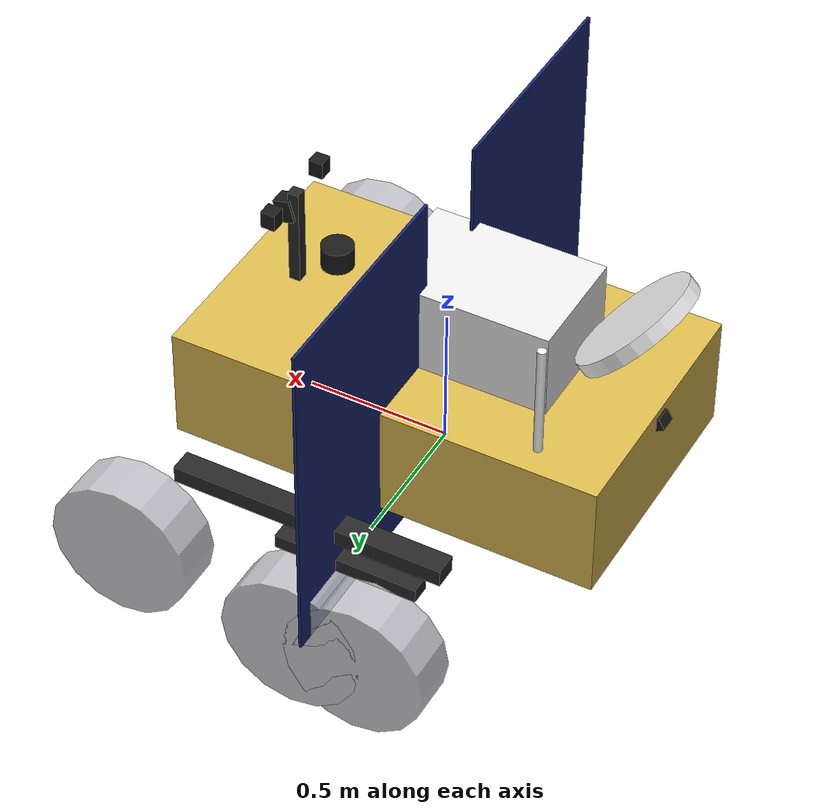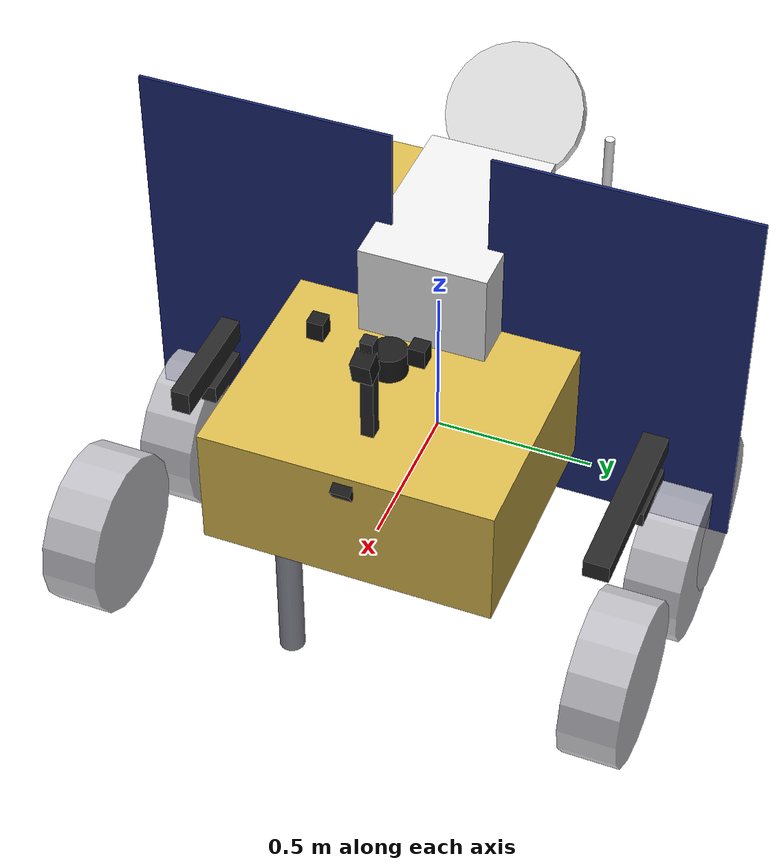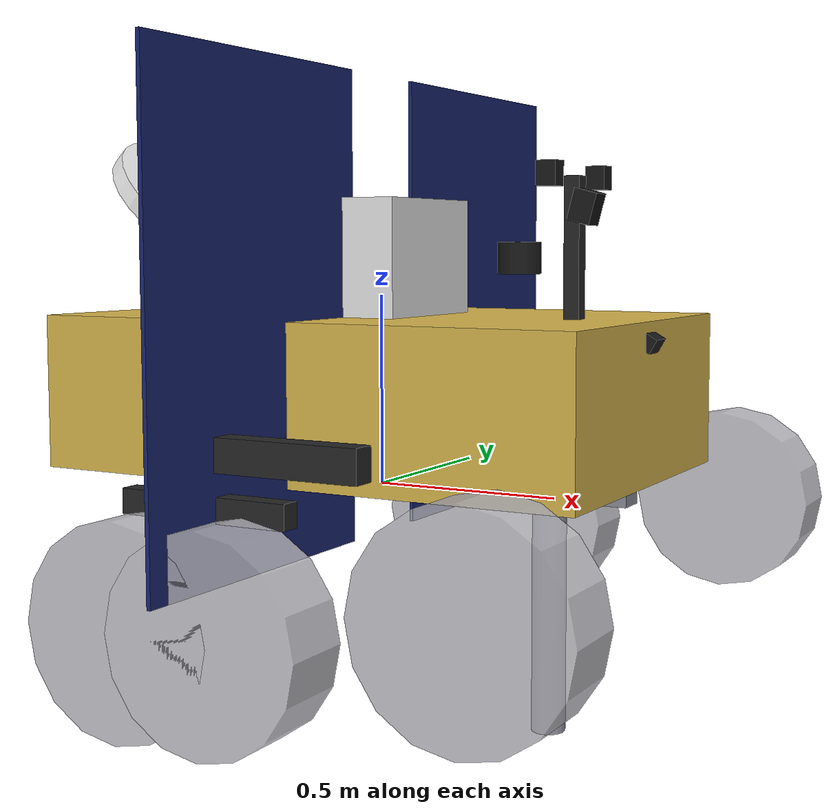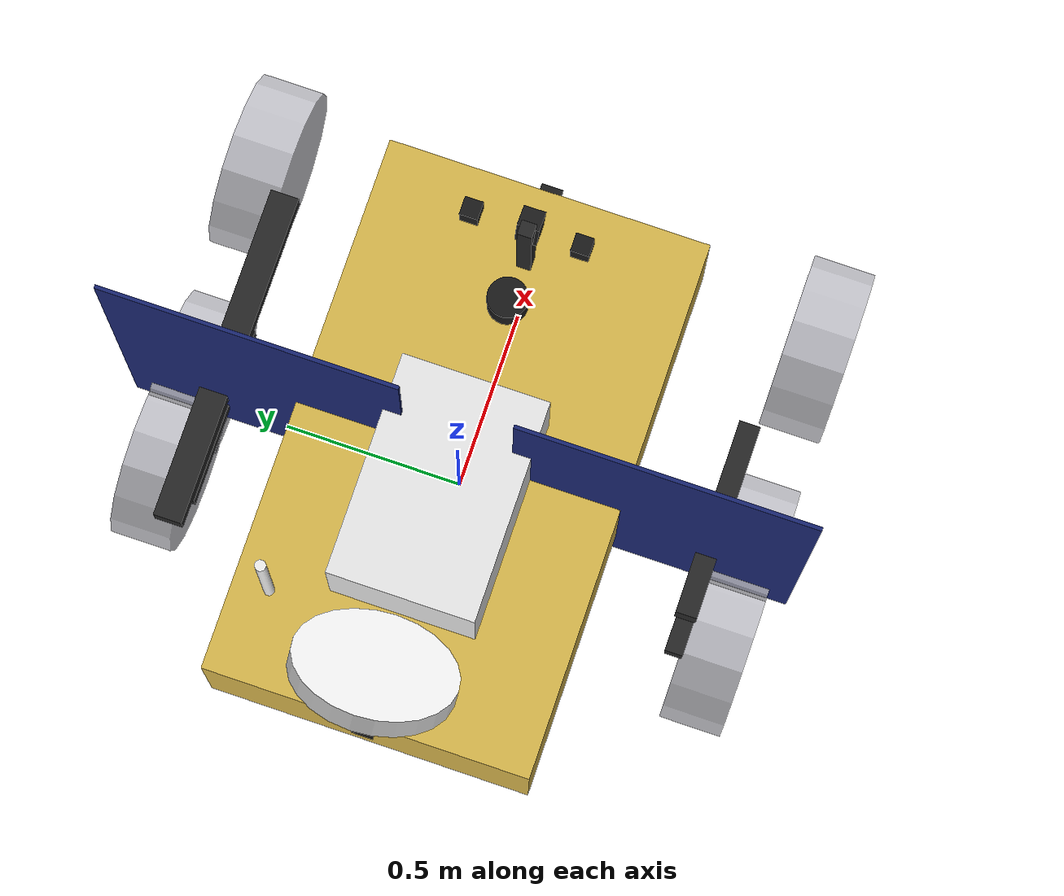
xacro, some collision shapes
<?xml version="1.0"?>
<robot name="lunar_scout" xmlns:xacro="http://www.ros.org/wiki/xacro">

  <!-- STL meshes exported from NX CAD at 1:1 scale (meters) -->
  <xacro:property name="MESH_PKG" value="package://lunar_scout_description/meshes"/>

  <!-- ============================================================
       PROPERTIES AND CONSTANTS
       ============================================================ -->
  <xacro:property name="PI" value="3.14159265358979"/>

  <!-- Chassis dimensions (aluminum honeycomb structure) -->
  <xacro:property name="chassis_length"    value="1.60"/>
  <xacro:property name="chassis_width"     value="1.00"/>
  <xacro:property name="chassis_height"    value="0.40"/>
  <xacro:property name="chassis_mass"      value="60.0"/>

  <!-- Wheel properties (titanium mesh wheels) -->
  <xacro:property name="wheel_radius"      value="0.25"/>
  <xacro:property name="wheel_width"       value="0.12"/>
  <xacro:property name="wheel_mass"        value="3.5"/>

  <!-- Rocker-bogie geometry -->
  <xacro:property name="rocker_length"     value="0.55"/>
  <xacro:property name="rocker_height"     value="0.08"/>
  <xacro:property name="rocker_width"      value="0.06"/>
  <xacro:property name="rocker_mass"       value="4.0"/>

  <xacro:property name="bogie_length"      value="0.45"/>
  <xacro:property name="bogie_height"      value="0.06"/>
  <xacro:property name="bogie_width"       value="0.05"/>
  <xacro:property name="bogie_mass"        value="3.0"/>

  <!-- Wheelbase and track -->
  <xacro:property name="wheelbase"         value="1.20"/>
  <xacro:property name="track_width"       value="1.40"/>
  <xacro:property name="side_offset"       value="0.70"/>

  <!-- Front wheel offset from rocker pivot -->
  <xacro:property name="front_wheel_x"     value="0.60"/>
  <!-- Rear bogie offset -->
  <xacro:property name="rear_wheel_x"      value="-0.60"/>
  <!-- Mid wheel offset -->
  <xacro:property name="mid_wheel_x"       value="0.0"/>

  <!-- Vertical drop from body to wheel center -->
  <xacro:property name="wheel_z_offset"    value="-0.35"/>

  <!-- Sensor positions -->
  <xacro:property name="imu_x"             value="0.0"/>
  <xacro:property name="imu_y"             value="0.0"/>
  <xacro:property name="imu_z"             value="0.05"/>

  <xacro:property name="lidar_x"           value="0.40"/>
  <xacro:property name="lidar_y"           value="0.0"/>
  <xacro:property name="lidar_z"           value="0.35"/>

  <xacro:property name="nav_cam_baseline"  value="0.30"/>
  <xacro:property name="nav_cam_x"         value="0.55"/>
  <xacro:property name="nav_cam_z"         value="0.30"/>

  <xacro:property name="hazard_cam_x_front" value="0.75"/>
  <xacro:property name="hazard_cam_x_rear"  value="-0.75"/>
  <xacro:property name="hazard_cam_z"       value="0.15"/>

  <!-- ============================================================
       INERTIA MACROS
       ============================================================ -->
  <xacro:macro name="box_inertia" params="m x y z">
    <inertial>
      <mass value="${m}"/>
      <inertia
        ixx="${m*(y*y+z*z)/12.0}"
        ixy="0.0" ixz="0.0"
        iyy="${m*(x*x+z*z)/12.0}"
        iyz="0.0"
        izz="${m*(x*x+y*y)/12.0}"/>
    </inertial>
  </xacro:macro>

  <xacro:macro name="cylinder_inertia" params="m r h">
    <inertial>
      <mass value="${m}"/>
      <inertia
        ixx="${m*(3*r*r+h*h)/12.0}"
        ixy="0.0" ixz="0.0"
        iyy="${m*(3*r*r+h*h)/12.0}"
        iyz="0.0"
        izz="${m*r*r/2.0}"/>
    </inertial>
  </xacro:macro>

  <xacro:macro name="sphere_inertia" params="m r">
    <inertial>
      <mass value="${m}"/>
      <inertia
        ixx="${2*m*r*r/5.0}"
        ixy="0.0" ixz="0.0"
        iyy="${2*m*r*r/5.0}"
        iyz="0.0"
        izz="${2*m*r*r/5.0}"/>
    </inertial>
  </xacro:macro>

  <!-- ============================================================
       MATERIAL DEFINITIONS
       ============================================================ -->
  <material name="aluminum_gold">
    <color rgba="0.85 0.72 0.30 1.0"/>
  </material>
  <material name="titanium_mesh">
    <color rgba="0.75 0.75 0.78 0.85"/>
  </material>
  <material name="carbon_fiber">
    <color rgba="0.15 0.15 0.15 1.0"/>
  </material>
  <material name="white_thermal">
    <color rgba="0.92 0.92 0.92 1.0"/>
  </material>
  <material name="solar_panel_blue">
    <color rgba="0.10 0.15 0.45 1.0"/>
  </material>
  <material name="sensor_black">
    <color rgba="0.1 0.1 0.1 1.0"/>
  </material>
  <material name="antenna_white">
    <color rgba="0.95 0.95 0.95 1.0"/>
  </material>
  <material name="science_gray">
    <color rgba="0.55 0.55 0.60 1.0"/>
  </material>

  <!-- ============================================================
       WHEEL MACRO
       ============================================================ -->
  <xacro:macro name="wheel" params="prefix side reflect_y">
    <link name="${prefix}_${side}_wheel">
      <xacro:cylinder_inertia m="${wheel_mass}" r="${wheel_radius}" h="${wheel_width}"/>
      <visual>
        <origin xyz="0 0 0" rpy="${PI/2} 0 0"/>
        <geometry>
          <cylinder radius="${wheel_radius}" length="${wheel_width}"/>
        </geometry>
        <material name="titanium_mesh"/>
      </visual>
      <collision>
        <origin xyz="0 0 0" rpy="${PI/2} 0 0"/>
        <geometry>
          <cylinder radius="${wheel_radius}" length="${wheel_width}"/>
        </geometry>
      </collision>
    </link>

    <!-- Wheel drive joint (continuous for wheel spin) -->
    <joint name="${prefix}_${side}_wheel_joint" type="continuous">
      <parent link="${prefix}_${side}_bogie"/>
      <child  link="${prefix}_${side}_wheel"/>
      <origin xyz="${mid_wheel_x} ${reflect_y * (bogie_width/2 + wheel_width/2 + 0.02)} ${wheel_z_offset}" rpy="0 0 0"/>
      <axis xyz="0 1 0"/>
      <dynamics damping="0.5" friction="1.0"/>
      <limit effort="30.0" velocity="10.0"/>
    </joint>
  </xacro:macro>

  <!-- ============================================================
       ROCKER-BOGIE SUSPENSION MACRO
       ============================================================ -->
  <xacro:macro name="suspension_side" params="side reflect_y">

    <!-- === ROCKER LINK === -->
    <link name="${side}_rocker">
      <xacro:box_inertia m="${rocker_mass}" x="${rocker_length}" y="${rocker_width}" z="${rocker_height}"/>
      <visual>
        <origin xyz="0 0 0" rpy="0 0 0"/>
        <geometry>
          <mesh filename="${MESH_PKG}/rocker_arm_${side}.stl" scale="1 1 1"/>
        </geometry>
        <material name="carbon_fiber"/>
      </visual>
      <collision>
        <origin xyz="0 0 0" rpy="0 0 0"/>
        <geometry>
          <box size="${rocker_length} ${rocker_width} ${rocker_height}"/>
        </geometry>
      </collision>
    </link>

    <!-- Rocker pivot joint (revolute about Y, allows rocker to pitch) -->
    <joint name="${side}_rocker_joint" type="revolute">
      <parent link="base_link"/>
      <child  link="${side}_rocker"/>
      <origin xyz="0.10 ${reflect_y * side_offset} ${wheel_z_offset + wheel_radius + 0.02}" rpy="0 0 0"/>
      <axis xyz="0 1 0"/>
      <limit lower="-0.4" upper="0.4" effort="0.0" velocity="1.0"/>
      <dynamics damping="1.0" friction="0.5"/>
    </joint>

    <!-- === FRONT WHEEL (directly on rocker) === -->
    <link name="front_${side}_wheel">
      <xacro:cylinder_inertia m="${wheel_mass}" r="${wheel_radius}" h="${wheel_width}"/>
      <visual>
        <origin xyz="0 0 0" rpy="${PI/2} 0 0"/>
        <geometry>
          <mesh filename="${MESH_PKG}/wheel_assembly.stl" scale="1 1 1"/>
        </geometry>
        <material name="titanium_mesh"/>
      </visual>
      <collision>
        <origin xyz="0 0 0" rpy="${PI/2} 0 0"/>
        <geometry>
          <cylinder radius="${wheel_radius}" length="${wheel_width}"/>
        </geometry>
        <surface>
          <friction>
            <ode>
              <mu>0.85</mu>
              <mu2>0.65</mu2>
              <fdir1>1 0 0</fdir1>
              <slip1>0.0</slip1>
              <slip2>0.0</slip2>
            </ode>
          </friction>
          <contact>
            <ode>
              <kp>1e6</kp>
              <kd>100.0</kd>
              <min_depth>0.001</min_depth>
            </ode>
          </contact>
        </surface>
      </collision>
    </link>

    <joint name="front_${side}_wheel_joint" type="continuous">
      <parent link="${side}_rocker"/>
      <child  link="front_${side}_wheel"/>
      <origin xyz="${front_wheel_x} ${reflect_y * (rocker_width/2 + wheel_width/2 + 0.02)} ${-(wheel_radius + 0.02)}" rpy="0 0 0"/>
      <axis xyz="0 1 0"/>
      <dynamics damping="0.5" friction="1.0"/>
      <limit effort="30.0" velocity="10.0"/>
    </joint>

    <!-- === BOGIE LINK (rear half of suspension) === -->
    <link name="${side}_bogie">
      <xacro:box_inertia m="${bogie_mass}" x="${bogie_length}" y="${bogie_width}" z="${bogie_height}"/>
      <visual>
        <origin xyz="0 0 0" rpy="0 0 0"/>
        <geometry>
          <mesh filename="${MESH_PKG}/bogie_arm_${side}.stl" scale="1 1 1"/>
        </geometry>
        <material name="carbon_fiber"/>
      </visual>
      <collision>
        <origin xyz="0 0 0" rpy="0 0 0"/>
        <geometry>
          <box size="${bogie_length} ${bogie_width} ${bogie_height}"/>
        </geometry>
      </collision>
    </link>

    <!-- Bogie pivot joint (revolute about Y axis) -->
    <joint name="${side}_bogie_joint" type="revolute">
      <parent link="${side}_rocker"/>
      <child  link="${side}_bogie"/>
      <origin xyz="${-rocker_length/4} 0 ${-(wheel_radius/2)}" rpy="0 0 0"/>
      <axis xyz="0 1 0"/>
      <limit lower="-0.5" upper="0.5" effort="0.0" velocity="1.0"/>
      <dynamics damping="0.8" friction="0.3"/>
    </joint>

    <!-- === MID WHEEL (front of bogie) === -->
    <link name="mid_${side}_wheel">
      <xacro:cylinder_inertia m="${wheel_mass}" r="${wheel_radius}" h="${wheel_width}"/>
      <visual>
        <origin xyz="0 0 0" rpy="${PI/2} 0 0"/>
        <geometry>
          <mesh filename="${MESH_PKG}/wheel_assembly.stl" scale="1 1 1"/>
        </geometry>
        <material name="titanium_mesh"/>
      </visual>
      <collision>
        <origin xyz="0 0 0" rpy="${PI/2} 0 0"/>
        <geometry>
          <cylinder radius="${wheel_radius}" length="${wheel_width}"/>
        </geometry>
        <surface>
          <friction>
            <ode>
              <mu>0.85</mu>
              <mu2>0.65</mu2>
            </ode>
          </friction>
        </surface>
      </collision>
    </link>

    <joint name="mid_${side}_wheel_joint" type="continuous">
      <parent link="${side}_bogie"/>
      <child  link="mid_${side}_wheel"/>
      <origin xyz="${bogie_length/4} ${reflect_y * (bogie_width/2 + wheel_width/2 + 0.02)} ${-(wheel_radius + 0.01)}" rpy="0 0 0"/>
      <axis xyz="0 1 0"/>
      <dynamics damping="0.5" friction="1.0"/>
      <limit effort="30.0" velocity="10.0"/>
    </joint>

    <!-- === REAR WHEEL (rear of bogie) === -->
    <link name="rear_${side}_wheel">
      <xacro:cylinder_inertia m="${wheel_mass}" r="${wheel_radius}" h="${wheel_width}"/>
      <visual>
        <origin xyz="0 0 0" rpy="${PI/2} 0 0"/>
        <geometry>
          <mesh filename="${MESH_PKG}/wheel_assembly.stl" scale="1 1 1"/>
        </geometry>
        <material name="titanium_mesh"/>
      </visual>
      <collision>
        <origin xyz="0 0 0" rpy="${PI/2} 0 0"/>
        <geometry>
          <cylinder radius="${wheel_radius}" length="${wheel_width}"/>
        </geometry>
        <surface>
          <friction>
            <ode>
              <mu>0.85</mu>
              <mu2>0.65</mu2>
            </ode>
          </friction>
        </surface>
      </collision>
    </link>

    <joint name="rear_${side}_wheel_joint" type="continuous">
      <parent link="${side}_bogie"/>
      <child  link="rear_${side}_wheel"/>
      <origin xyz="${-bogie_length/4} ${reflect_y * (bogie_width/2 + wheel_width/2 + 0.02)} ${-(wheel_radius + 0.01)}" rpy="0 0 0"/>
      <axis xyz="0 1 0"/>
      <dynamics damping="0.5" friction="1.0"/>
      <limit effort="30.0" velocity="10.0"/>
    </joint>

  </xacro:macro>

  <!-- ============================================================
       SOLAR ARRAY MACRO
       ============================================================ -->
  <xacro:macro name="solar_panel" params="side reflect_y">
    <link name="solar_panel_${side}">
      <xacro:box_inertia m="4.0" x="1.20" y="0.80" z="0.02"/>
      <visual>
        <origin xyz="0 0 0" rpy="0 0 0"/>
        <geometry>
          <mesh filename="${MESH_PKG}/solar_array_panel.stl" scale="1 1 1"/>
        </geometry>
        <material name="solar_panel_blue"/>
      </visual>
      <collision>
        <origin xyz="0 0 0" rpy="0 0 0"/>
        <geometry>
          <box size="1.20 0.80 0.02"/>
        </geometry>
      </collision>
    </link>
    <!-- Deployable hinge joint for solar panel -->
    <joint name="solar_panel_${side}_joint" type="revolute">
      <parent link="base_link"/>
      <child  link="solar_panel_${side}"/>
      <origin xyz="0.0 ${reflect_y * (chassis_width/2 + 0.05)} 0.22" rpy="0 ${-PI/2 * reflect_y} 0"/>
      <axis xyz="1 0 0"/>
      <limit lower="0.0" upper="${PI/2}" effort="5.0" velocity="0.2"/>
      <dynamics damping="2.0" friction="1.0"/>
    </joint>
  </xacro:macro>

  <!-- ============================================================
       BASE / CHASSIS LINK
       ============================================================ -->
  <link name="base_footprint"/>

  <joint name="base_footprint_joint" type="fixed">
    <parent link="base_footprint"/>
    <child  link="base_link"/>
    <origin xyz="0 0 ${wheel_radius}" rpy="0 0 0"/>
  </joint>

  <link name="base_link">
    <!-- Aluminum honeycomb chassis with thermal insulation blankets (MLI) -->
    <inertial>
      <mass value="${chassis_mass}"/>
      <!-- Non-uniform inertia (payload concentrated at center-rear) -->
      <inertia
        ixx="${chassis_mass*(chassis_width*chassis_width+chassis_height*chassis_height)/12.0}"
        ixy="0.0" ixz="-0.8"
        iyy="${chassis_mass*(chassis_length*chassis_length+chassis_height*chassis_height)/12.0}"
        iyz="0.0"
        izz="${chassis_mass*(chassis_length*chassis_length+chassis_width*chassis_width)/12.0}"/>
    </inertial>
    <visual>
      <origin xyz="0 0 0" rpy="0 0 0"/>
      <geometry>
        <mesh filename="${MESH_PKG}/chassis_body.stl" scale="1 1 1"/>
      </geometry>
      <material name="aluminum_gold"/>
    </visual>
    <collision>
      <origin xyz="0 0 0" rpy="0 0 0"/>
      <geometry>
        <box size="${chassis_length} ${chassis_width} ${chassis_height}"/>
      </geometry>
    </collision>
  </link>

  <!-- Electronics bay thermal shroud (MLI blanket representation) -->
  <link name="electronics_bay">
    <xacro:box_inertia m="15.0" x="0.50" y="0.80" z="0.30"/>
    <visual>
      <origin xyz="0 0 0" rpy="0 0 0"/>
      <geometry>
        <mesh filename="${MESH_PKG}/electronics_bay.stl" scale="1 1 1"/>
      </geometry>
      <material name="white_thermal"/>
    </visual>
    <collision>
      <origin xyz="0 0 0" rpy="0 0 0"/>
      <geometry>
        <box size="0.50 0.80 0.30"/>
      </geometry>
    </collision>
  </link>

  <joint name="electronics_bay_joint" type="fixed">
    <parent link="base_link"/>
    <child  link="electronics_bay"/>
    <origin xyz="-0.15 0 ${chassis_height/2 + 0.15}" rpy="0 0 0"/>
  </joint>

  <!-- ============================================================
       ROCKER-BOGIE SUSPENSION (BOTH SIDES)
       ============================================================ -->
  <xacro:suspension_side side="left"  reflect_y="1"/>
  <xacro:suspension_side side="right" reflect_y="-1"/>

  <!-- ============================================================
       IMU SENSOR
       ============================================================ -->
  <link name="imu_link">
    <xacro:box_inertia m="0.05" x="0.04" y="0.04" z="0.01"/>
    <visual>
      <origin xyz="0 0 0" rpy="0 0 0"/>
      <geometry>
        <box size="0.04 0.04 0.01"/>
      </geometry>
      <material name="sensor_black"/>
    </visual>
    <collision>
      <origin xyz="0 0 0" rpy="0 0 0"/>
      <geometry>
        <box size="0.04 0.04 0.01"/>
      </geometry>
    </collision>
  </link>

  <joint name="imu_joint" type="fixed">
    <parent link="base_link"/>
    <child  link="imu_link"/>
    <origin xyz="${imu_x} ${imu_y} ${imu_z}" rpy="0 0 0"/>
  </joint>

  <!-- ============================================================
       LIDAR (Velodyne VLP-16 style)
       ============================================================ -->
  <link name="lidar_link">
    <xacro:cylinder_inertia m="0.83" r="0.051" h="0.072"/>
    <visual>
      <origin xyz="0 0 0" rpy="0 0 0"/>
      <geometry>
        <mesh filename="${MESH_PKG}/lidar_housing.stl" scale="1 1 1"/>
      </geometry>
      <material name="sensor_black"/>
    </visual>
    <collision>
      <origin xyz="0 0 0" rpy="0 0 0"/>
      <geometry>
        <cylinder radius="0.055" length="0.080"/>
      </geometry>
    </collision>
  </link>

  <joint name="lidar_joint" type="fixed">
    <parent link="base_link"/>
    <child  link="lidar_link"/>
    <origin xyz="${lidar_x} ${lidar_y} ${lidar_z}" rpy="0 0 0"/>
  </joint>

  <!-- ============================================================
       NAVIGATION CAMERAS (Stereo pair, 0.3m baseline)
       ============================================================ -->
  <!-- NAV CAM MAST (support structure) -->
  <link name="nav_cam_mast">
    <xacro:box_inertia m="0.8" x="0.04" y="0.04" z="0.35"/>
    <visual>
      <origin xyz="0 0 0" rpy="0 0 0"/>
      <geometry>
        <mesh filename="${MESH_PKG}/mast_assembly.stl" scale="1 1 1"/>
      </geometry>
      <material name="carbon_fiber"/>
    </visual>
    <collision>
      <origin xyz="0 0 0" rpy="0 0 0"/>
      <geometry>
        <box size="0.04 0.04 0.35"/>
      </geometry>
    </collision>
  </link>

  <joint name="nav_cam_mast_joint" type="fixed">
    <parent link="base_link"/>
    <child  link="nav_cam_mast"/>
    <origin xyz="${nav_cam_x} 0 ${chassis_height/2 + 0.175}" rpy="0 0 0"/>
  </joint>

  <!-- LEFT NAV CAM -->
  <link name="nav_cam_left_link">
    <xacro:box_inertia m="0.22" x="0.05" y="0.05" z="0.06"/>
    <visual>
      <origin xyz="0 0 0" rpy="0 0 0"/>
      <geometry>
        <box size="0.05 0.05 0.06"/>
      </geometry>
      <material name="sensor_black"/>
    </visual>
    <collision>
      <origin xyz="0 0 0" rpy="0 0 0"/>
      <geometry>
        <box size="0.05 0.05 0.06"/>
      </geometry>
    </collision>
  </link>

  <joint name="nav_cam_left_joint" type="fixed">
    <parent link="nav_cam_mast"/>
    <child  link="nav_cam_left_link"/>
    <origin xyz="0 ${nav_cam_baseline/2} ${0.35/2}" rpy="0 0 0"/>
  </joint>

  <!-- RIGHT NAV CAM -->
  <link name="nav_cam_right_link">
    <xacro:box_inertia m="0.22" x="0.05" y="0.05" z="0.06"/>
    <visual>
      <origin xyz="0 0 0" rpy="0 0 0"/>
      <geometry>
        <box size="0.05 0.05 0.06"/>
      </geometry>
      <material name="sensor_black"/>
    </visual>
    <collision>
      <origin xyz="0 0 0" rpy="0 0 0"/>
      <geometry>
        <box size="0.05 0.05 0.06"/>
      </geometry>
    </collision>
  </link>

  <joint name="nav_cam_right_joint" type="fixed">
    <parent link="nav_cam_mast"/>
    <child  link="nav_cam_right_link"/>
    <origin xyz="0 ${-nav_cam_baseline/2} ${0.35/2}" rpy="0 0 0"/>
  </joint>

  <!-- ============================================================
       HAZARD CAMERAS (Front + Rear)
       ============================================================ -->
  <!-- Front hazcam (wide angle, downward-tilted 30 deg) -->
  <link name="hazcam_front_link">
    <xacro:box_inertia m="0.18" x="0.04" y="0.06" z="0.04"/>
    <visual>
      <origin xyz="0 0 0" rpy="0 0 0"/>
      <geometry>
        <box size="0.04 0.06 0.04"/>
      </geometry>
      <material name="sensor_black"/>
    </visual>
    <collision>
      <origin xyz="0 0 0" rpy="0 0 0"/>
      <geometry>
        <box size="0.04 0.06 0.04"/>
      </geometry>
    </collision>
  </link>

  <joint name="hazcam_front_joint" type="fixed">
    <parent link="base_link"/>
    <child  link="hazcam_front_link"/>
    <origin xyz="${hazard_cam_x_front} 0 ${hazard_cam_z}" rpy="0 ${PI/6} 0"/>
  </joint>

  <!-- Rear hazcam -->
  <link name="hazcam_rear_link">
    <xacro:box_inertia m="0.18" x="0.04" y="0.06" z="0.04"/>
    <visual>
      <origin xyz="0 0 0" rpy="0 0 0"/>
      <geometry>
        <box size="0.04 0.06 0.04"/>
      </geometry>
      <material name="sensor_black"/>
    </visual>
    <collision>
      <origin xyz="0 0 0" rpy="0 0 0"/>
      <geometry>
        <box size="0.04 0.06 0.04"/>
      </geometry>
    </collision>
  </link>

  <joint name="hazcam_rear_joint" type="fixed">
    <parent link="base_link"/>
    <child  link="hazcam_rear_link"/>
    <origin xyz="${hazard_cam_x_rear} 0 ${hazard_cam_z}" rpy="0 ${-PI/6} ${PI}"/>
  </joint>

  <!-- ============================================================
       UHF ANTENNA (omnidirectional, relay comms)
       ============================================================ -->
  <link name="uhf_antenna_link">
    <xacro:cylinder_inertia m="0.35" r="0.015" h="0.40"/>
    <visual>
      <origin xyz="0 0 0.20" rpy="0 0 0"/>
      <geometry>
        <cylinder radius="0.015" length="0.40"/>
      </geometry>
      <material name="antenna_white"/>
    </visual>
    <collision>
      <origin xyz="0 0 0.20" rpy="0 0 0"/>
      <geometry>
        <cylinder radius="0.015" length="0.40"/>
      </geometry>
    </collision>
  </link>

  <joint name="uhf_antenna_joint" type="fixed">
    <parent link="base_link"/>
    <child  link="uhf_antenna_link"/>
    <origin xyz="-0.50 0.35 ${chassis_height/2}" rpy="0 0 0"/>
  </joint>

  <!-- ============================================================
       HGA - High Gain Antenna (directional, X-band DTE comms)
       ============================================================ -->
  <link name="hga_link">
    <xacro:cylinder_inertia m="1.2" r="0.22" h="0.05"/>
    <visual>
      <origin xyz="0 0 0" rpy="0 0 0"/>
      <geometry>
        <mesh filename="${MESH_PKG}/hga_dish.stl" scale="1 1 1"/>
      </geometry>
      <material name="antenna_white"/>
    </visual>
    <collision>
      <origin xyz="0 0 0" rpy="0 0 0"/>
      <geometry>
        <cylinder radius="0.22" length="0.05"/>
      </geometry>
    </collision>
  </link>

  <joint name="hga_joint" type="revolute">
    <parent link="base_link"/>
    <child  link="hga_link"/>
    <origin xyz="-0.65 0.0 ${chassis_height/2 + 0.30}" rpy="0 ${PI/4} 0"/>
    <axis xyz="0 1 0"/>
    <limit lower="${-PI/3}" upper="${PI/3}" effort="2.0" velocity="0.1"/>
    <dynamics damping="1.0" friction="0.5"/>
  </joint>

  <!-- ============================================================
       SOLAR PANELS (deployable)
       ============================================================ -->
  <xacro:solar_panel side="left"  reflect_y="1"/>
  <xacro:solar_panel side="right" reflect_y="-1"/>

  <!-- ============================================================
       SCIENCE PAYLOAD: DRILL
       ============================================================ -->
  <link name="science_drill_link">
    <xacro:cylinder_inertia m="8.0" r="0.04" h="0.60"/>
    <visual>
      <origin xyz="0 0 -0.30" rpy="0 0 0"/>
      <geometry>
        <mesh filename="${MESH_PKG}/drill_assembly.stl" scale="1 1 1"/>
      </geometry>
      <material name="science_gray"/>
    </visual>
    <collision>
      <origin xyz="0 0 -0.30" rpy="0 0 0"/>
      <geometry>
        <cylinder radius="0.04" length="0.60"/>
      </geometry>
    </collision>
  </link>

  <joint name="science_drill_joint" type="prismatic">
    <parent link="base_link"/>
    <child  link="science_drill_link"/>
    <origin xyz="0.60 -0.25 ${-chassis_height/2 + 0.05}" rpy="0 0 0"/>
    <axis xyz="0 0 -1"/>
    <limit lower="0.0" upper="0.50" effort="50.0" velocity="0.02"/>
    <dynamics damping="5.0" friction="2.0"/>
  </joint>

  <!-- ============================================================
       SCIENCE PAYLOAD: NEUTRON SPECTROMETER
       ============================================================ -->
  <link name="neutron_spectrometer_link">
    <xacro:box_inertia m="1.8" x="0.12" y="0.08" z="0.10"/>
    <visual>
      <origin xyz="0 0 0" rpy="0 0 0"/>
      <geometry>
        <box size="0.12 0.08 0.10"/>
      </geometry>
      <material name="science_gray"/>
    </visual>
    <collision>
      <origin xyz="0 0 0" rpy="0 0 0"/>
      <geometry>
        <box size="0.12 0.08 0.10"/>
      </geometry>
    </collision>
  </link>

  <joint name="neutron_spectrometer_joint" type="fixed">
    <parent link="base_link"/>
    <child  link="neutron_spectrometer_link"/>
    <origin xyz="0.55 0.25 ${-chassis_height/2 - 0.05}" rpy="0 0 0"/>
  </joint>

  <!-- ============================================================
       SCIENCE PAYLOAD: THERMAL IR CAMERA
       ============================================================ -->
  <link name="thermal_ir_camera_link">
    <xacro:box_inertia m="0.45" x="0.06" y="0.06" z="0.08"/>
    <visual>
      <origin xyz="0 0 0" rpy="0 0 0"/>
      <geometry>
        <box size="0.06 0.06 0.08"/>
      </geometry>
      <material name="sensor_black"/>
    </visual>
    <collision>
      <origin xyz="0 0 0" rpy="0 0 0"/>
      <geometry>
        <box size="0.06 0.06 0.08"/>
      </geometry>
    </collision>
  </link>

  <joint name="thermal_ir_camera_joint" type="fixed">
    <parent link="nav_cam_mast"/>
    <child  link="thermal_ir_camera_link"/>
    <origin xyz="0.03 0 0.10" rpy="0 ${PI/12} 0"/>
  </joint>

  <!-- ============================================================
       ROS2 CONTROL PLUGIN
       ============================================================ -->
  <ros2_control name="lunar_scout_hardware" type="system">
    <hardware>
      <plugin>gazebo_ros2_control/GazeboSystem</plugin>
    </hardware>

    <!-- Front left wheel -->
    <joint name="front_left_wheel_joint">
      <command_interface name="velocity">
        <param name="min">-10.0</param>
        <param name="max">10.0</param>
      </command_interface>
      <state_interface name="velocity"/>
      <state_interface name="position"/>
    </joint>

    <!-- Front right wheel -->
    <joint name="front_right_wheel_joint">
      <command_interface name="velocity">
        <param name="min">-10.0</param>
        <param name="max">10.0</param>
      </command_interface>
      <state_interface name="velocity"/>
      <state_interface name="position"/>
    </joint>

    <!-- Mid left wheel -->
    <joint name="mid_left_wheel_joint">
      <command_interface name="velocity">
        <param name="min">-10.0</param>
        <param name="max">10.0</param>
      </command_interface>
      <state_interface name="velocity"/>
      <state_interface name="position"/>
    </joint>

    <!-- Mid right wheel -->
    <joint name="mid_right_wheel_joint">
      <command_interface name="velocity">
        <param name="min">-10.0</param>
        <param name="max">10.0</param>
      </command_interface>
      <state_interface name="velocity"/>
      <state_interface name="position"/>
    </joint>

    <!-- Rear left wheel -->
    <joint name="rear_left_wheel_joint">
      <command_interface name="velocity">
        <param name="min">-10.0</param>
        <param name="max">10.0</param>
      </command_interface>
      <state_interface name="velocity"/>
      <state_interface name="position"/>
    </joint>

    <!-- Rear right wheel -->
    <joint name="rear_right_wheel_joint">
      <command_interface name="velocity">
        <param name="min">-10.0</param>
        <param name="max">10.0</param>
      </command_interface>
      <state_interface name="velocity"/>
      <state_interface name="position"/>
    </joint>

    <!-- Passive rocker joints (state only) -->
    <joint name="left_rocker_joint">
      <state_interface name="position"/>
      <state_interface name="velocity"/>
    </joint>
    <joint name="right_rocker_joint">
      <state_interface name="position"/>
      <state_interface name="velocity"/>
    </joint>
    <joint name="left_bogie_joint">
      <state_interface name="position"/>
      <state_interface name="velocity"/>
    </joint>
    <joint name="right_bogie_joint">
      <state_interface name="position"/>
      <state_interface name="velocity"/>
    </joint>
  </ros2_control>

  <!-- ============================================================
       GAZEBO PLUGIN: ROS2 CONTROL
       ============================================================ -->
  <gazebo>
    <plugin filename="libgazebo_ros2_control.so" name="gazebo_ros2_control">
      <robot_sim_type>gazebo_ros2_control/GazeboSystem</robot_sim_type>
      <parameters>$(find lunar_scout_description)/config/gazebo_controllers.yaml</parameters>
    </plugin>
  </gazebo>

  <!-- ============================================================
       GAZEBO PLUGIN: IMU SENSOR
       ============================================================ -->
  <gazebo reference="imu_link">
    <sensor name="imu_sensor" type="imu">
      <always_on>true</always_on>
      <update_rate>100</update_rate>
      <visualize>false</visualize>
      <topic>/imu/data</topic>
      <plugin filename="libgazebo_ros_imu_sensor.so" name="imu_plugin">
        <topicName>/imu/data</topicName>
        <bodyName>imu_link</bodyName>
        <updateRateHZ>100.0</updateRateHZ>
        <gaussianNoise>0.00005</gaussianNoise>
        <xyzOffset>0 0 0</xyzOffset>
        <rpyOffset>0 0 0</rpyOffset>
        <frameName>imu_link</frameName>
        <initialOrientationAsReference>false</initialOrientationAsReference>
      </plugin>
      <pose>0 0 0 0 0 0</pose>
    </sensor>
  </gazebo>

  <!-- ============================================================
       GAZEBO PLUGIN: LIDAR (Velodyne VLP-16)
       ============================================================ -->
  <gazebo reference="lidar_link">
    <sensor name="velodyne_vlp16" type="ray">
      <always_on>true</always_on>
      <visualize>false</visualize>
      <update_rate>10</update_rate>
      <ray>
        <scan>
          <horizontal>
            <samples>1800</samples>
            <resolution>1</resolution>
            <min_angle>-3.14159</min_angle>
            <max_angle>3.14159</max_angle>
          </horizontal>
          <vertical>
            <samples>16</samples>
            <resolution>1</resolution>
            <min_angle>-0.261799</min_angle>
            <max_angle>0.261799</max_angle>
          </vertical>
        </scan>
        <range>
          <min>0.10</min>
          <max>100.0</max>
          <resolution>0.001</resolution>
        </range>
        <noise>
          <type>gaussian</type>
          <mean>0.0</mean>
          <stddev>0.008</stddev>
        </noise>
      </ray>
      <plugin filename="libgazebo_ros_ray_sensor.so" name="lidar_plugin">
        <ros>
          <namespace>/</namespace>
          <remapping>~/out:=/lidar/points</remapping>
        </ros>
        <output_type>sensor_msgs/PointCloud2</output_type>
        <frame_name>lidar_link</frame_name>
      </plugin>
    </sensor>
  </gazebo>

  <!-- ============================================================
       GAZEBO PLUGIN: LEFT NAV CAM
       ============================================================ -->
  <gazebo reference="nav_cam_left_link">
    <sensor name="nav_cam_left" type="camera">
      <always_on>true</always_on>
      <visualize>false</visualize>
      <update_rate>10</update_rate>
      <camera name="nav_cam_left">
        <horizontal_fov>1.3962634</horizontal_fov>
        <image>
          <width>1280</width>
          <height>960</height>
          <format>R8G8B8</format>
        </image>
        <clip>
          <near>0.02</near>
          <far>300</far>
        </clip>
        <noise>
          <type>gaussian</type>
          <mean>0.0</mean>
          <stddev>0.002</stddev>
        </noise>
      </camera>
      <plugin filename="libgazebo_ros_camera.so" name="nav_cam_left_plugin">
        <ros>
          <remapping>image_raw:=/nav_cam/left/image_raw</remapping>
          <remapping>camera_info:=/nav_cam/left/camera_info</remapping>
        </ros>
        <camera_name>nav_cam_left</camera_name>
        <frame_name>nav_cam_left_link</frame_name>
        <hack_baseline>0.0</hack_baseline>
      </plugin>
    </sensor>
  </gazebo>

  <!-- ============================================================
       GAZEBO PLUGIN: RIGHT NAV CAM
       ============================================================ -->
  <gazebo reference="nav_cam_right_link">
    <sensor name="nav_cam_right" type="camera">
      <always_on>true</always_on>
      <visualize>false</visualize>
      <update_rate>10</update_rate>
      <camera name="nav_cam_right">
        <horizontal_fov>1.3962634</horizontal_fov>
        <image>
          <width>1280</width>
          <height>960</height>
          <format>R8G8B8</format>
        </image>
        <clip>
          <near>0.02</near>
          <far>300</far>
        </clip>
        <noise>
          <type>gaussian</type>
          <mean>0.0</mean>
          <stddev>0.002</stddev>
        </noise>
      </camera>
      <plugin filename="libgazebo_ros_camera.so" name="nav_cam_right_plugin">
        <ros>
          <remapping>image_raw:=/nav_cam/right/image_raw</remapping>
          <remapping>camera_info:=/nav_cam/right/camera_info</remapping>
        </ros>
        <camera_name>nav_cam_right</camera_name>
        <frame_name>nav_cam_right_link</frame_name>
        <hack_baseline>${nav_cam_baseline}</hack_baseline>
      </plugin>
    </sensor>
  </gazebo>

  <!-- ============================================================
       GAZEBO PLUGIN: FRONT HAZCAM
       ============================================================ -->
  <gazebo reference="hazcam_front_link">
    <sensor name="hazcam_front" type="camera">
      <always_on>true</always_on>
      <visualize>false</visualize>
      <update_rate>5</update_rate>
      <camera name="hazcam_front">
        <horizontal_fov>2.0944</horizontal_fov>  <!-- 120 degrees -->
        <image>
          <width>640</width>
          <height>480</height>
          <format>R8G8B8</format>
        </image>
        <clip>
          <near>0.05</near>
          <far>10</far>
        </clip>
      </camera>
      <plugin filename="libgazebo_ros_camera.so" name="hazcam_front_plugin">
        <ros>
          <remapping>image_raw:=/hazcam/front/image_raw</remapping>
          <remapping>camera_info:=/hazcam/front/camera_info</remapping>
        </ros>
        <camera_name>hazcam_front</camera_name>
        <frame_name>hazcam_front_link</frame_name>
      </plugin>
    </sensor>
  </gazebo>

  <!-- ============================================================
       GAZEBO PLUGIN: REAR HAZCAM
       ============================================================ -->
  <gazebo reference="hazcam_rear_link">
    <sensor name="hazcam_rear" type="camera">
      <always_on>true</always_on>
      <visualize>false</visualize>
      <update_rate>5</update_rate>
      <camera name="hazcam_rear">
        <horizontal_fov>2.0944</horizontal_fov>
        <image>
          <width>640</width>
          <height>480</height>
          <format>R8G8B8</format>
        </image>
        <clip>
          <near>0.05</near>
          <far>10</far>
        </clip>
      </camera>
      <plugin filename="libgazebo_ros_camera.so" name="hazcam_rear_plugin">
        <ros>
          <remapping>image_raw:=/hazcam/rear/image_raw</remapping>
          <remapping>camera_info:=/hazcam/rear/camera_info</remapping>
        </ros>
        <camera_name>hazcam_rear</camera_name>
        <frame_name>hazcam_rear_link</frame_name>
      </plugin>
    </sensor>
  </gazebo>

  <!-- ============================================================
       GAZEBO PLUGIN: GPS (Simulated lunar positioning)
       ============================================================ -->
  <gazebo>
    <plugin filename="libgazebo_ros_gps_sensor.so" name="gps_plugin">
      <ros>
        <remapping>~/out:=/gps/fix</remapping>
      </ros>
      <link_name>base_link</link_name>
      <update_rate>1</update_rate>
      <frame_name>base_link</frame_name>
      <!-- Lunar coordinate reference (Shackleton Crater rim, South Pole) -->
      <latitude_deg>-89.9</latitude_deg>
      <longitude_deg>0.0</longitude_deg>
      <altitude>1800.0</altitude>
      <drift>0.001 0.001 0.001</drift>
      <gaussian_noise>0.01 0.01 0.01</gaussian_noise>
      <velocity_drift>0.0001 0.0001 0.0001</velocity_drift>
      <velocity_gaussian_noise>0.005 0.005 0.005</velocity_gaussian_noise>
    </plugin>
  </gazebo>

  <!-- ============================================================
       GAZEBO MATERIAL OVERRIDES
       ============================================================ -->
  <gazebo reference="base_link">
    <material>Gazebo/Gold</material>
    <mu1>0.8</mu1>
    <mu2>0.8</mu2>
  </gazebo>

  <gazebo reference="electronics_bay">
    <material>Gazebo/White</material>
  </gazebo>

  <gazebo reference="lidar_link">
    <material>Gazebo/DarkGrey</material>
  </gazebo>

  <gazebo reference="solar_panel_left">
    <material>Gazebo/Blue</material>
  </gazebo>

  <gazebo reference="solar_panel_right">
    <material>Gazebo/Blue</material>
  </gazebo>

</robot>
